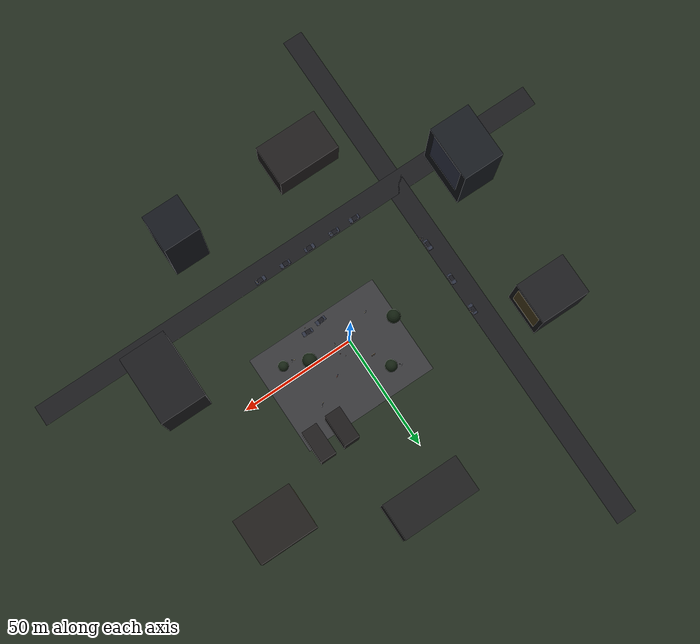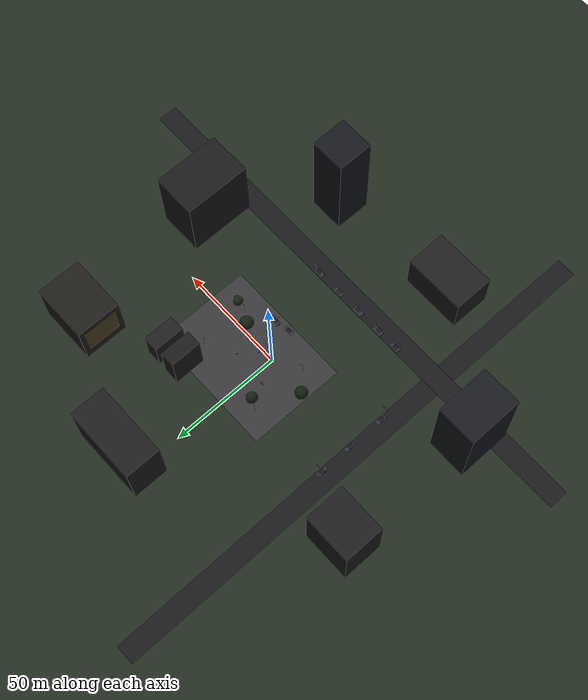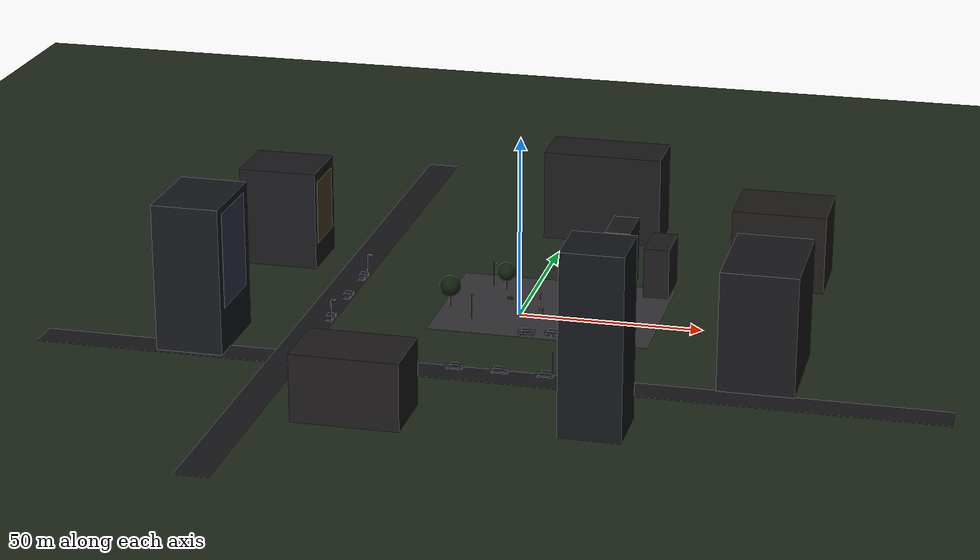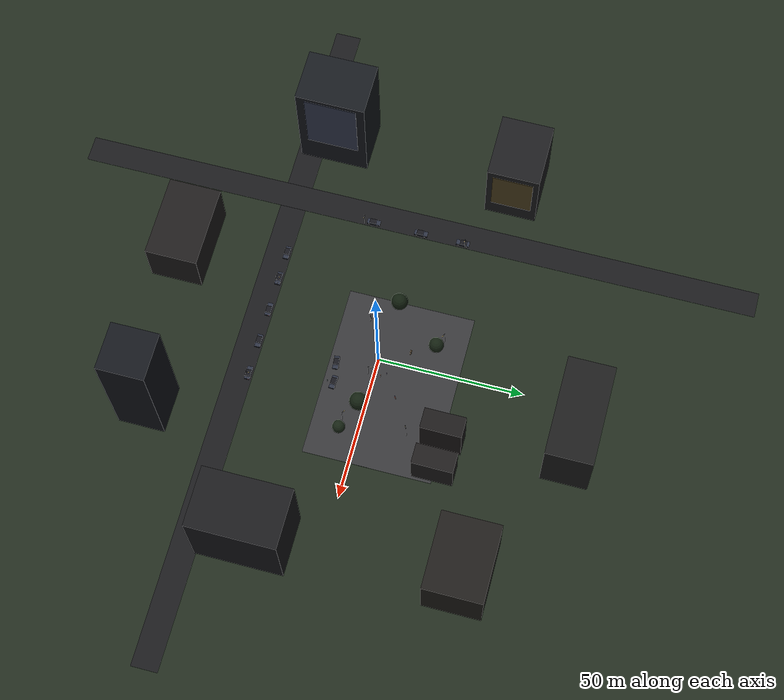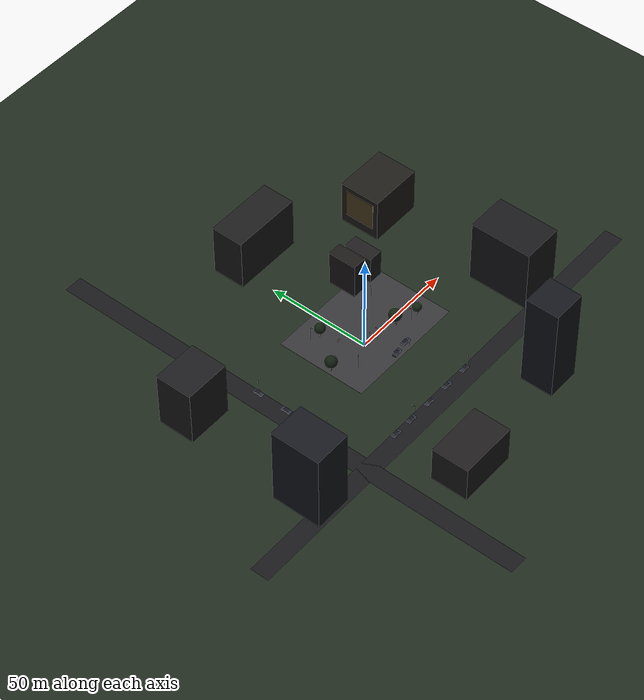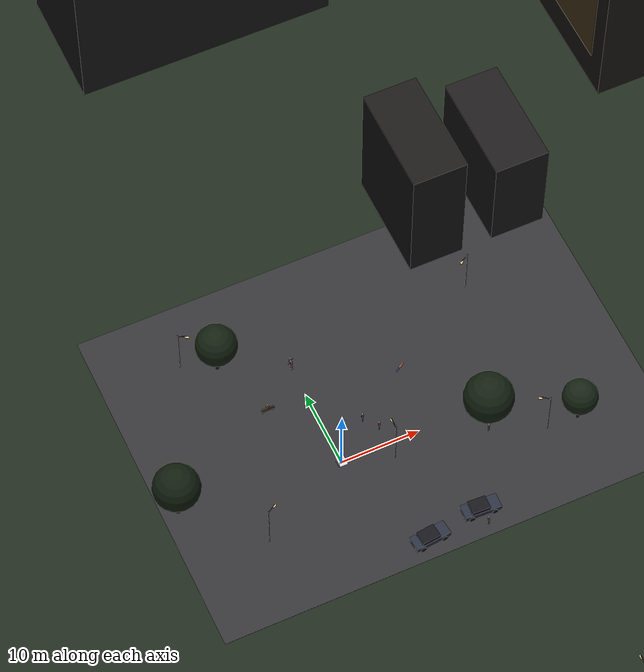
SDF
<sdf version="1.9">
 <world name="gradis_city">
  <physics name="1ms" type="ignored">
   <max_step_size>0.001</max_step_size>
   <real_time_factor>1.0</real_time_factor>
  </physics>
  <plugin filename="gz-sim-physics-system" name="gz::sim::systems::Physics"/>
  <plugin filename="gz-sim-user-commands-system" name="gz::sim::systems::UserCommands"/>
  <plugin filename="gz-sim-scene-broadcaster-system" name="gz::sim::systems::SceneBroadcaster"/>
  <plugin filename="gz-sim-imu-system" name="gz::sim::systems::Imu"/>
  <plugin filename="gz-sim-sensors-system" name="gz::sim::systems::Sensors">
   <render_engine>ogre2</render_engine>
  </plugin>
  <spherical_coordinates>
   <surface_model>EARTH_WGS84</surface_model>
   <latitude_deg>37.52860</latitude_deg>
   <longitude_deg>126.96520</longitude_deg>
   <elevation>38</elevation>
   <heading_deg>0</heading_deg>
  </spherical_coordinates>
  <scene>
   <ambient>0.05 0.05 0.07 1</ambient>
   <background>0.015 0.015 0.03 1</background>
   <shadows>true</shadows>
  </scene>
  <light type="directional" name="moon">
   <pose>0 0 300 0 0 0</pose>
   <diffuse>0.10 0.11 0.16 1</diffuse>
   <specular>0.02 0.02 0.03 1</specular>
   <direction>0.3 -0.5 -1</direction>
  </light>
  <model name="ground">
   <static>true</static>
   <link name="l">
    <collision name="c"><geometry><plane><normal>0 0 1</normal><size>500 500</size></plane></geometry></collision>
    <visual name="v">
     <geometry><plane><normal>0 0 1</normal><size>500 500</size></plane></geometry>
     <material><ambient>0.10 0.13 0.09 1</ambient><diffuse>0.12 0.16 0.11 1</diffuse></material>
    </visual>
   </link>
  </model>
  <model name="plaza">
   <static>true</static>
   <pose>8 6 0.01 0 0 0</pose>
   <link name="l">
    <visual name="v">
     <geometry><box><size>60 44 0.02</size></box></geometry>
     <material><ambient>0.13 0.13 0.14 1</ambient><diffuse>0.2 0.2 0.21 1</diffuse></material>
    </visual>
    <collision name="c"><geometry><box><size>60 44 0.02</size></box></geometry></collision>
   </link>
  </model>
  <model name="road_ew">
   <static>true</static>
   <pose>0 -44 0.01 0 0 0</pose>
   <link name="l">
    <visual name="v">
     <geometry><box><size>240 9 0.02</size></box></geometry>
     <material><diffuse>0.09 0.09 0.1 1</diffuse></material>
    </visual>
   </link>
  </model>
  <model name="road_ns">
   <static>true</static>
   <pose>-52 0 0.01 0 0 0</pose>
   <link name="l">
    <visual name="v">
     <geometry><box><size>9 240 0.02</size></box></geometry>
     <material><diffuse>0.09 0.09 0.1 1</diffuse></material>
    </visual>
   </link>
  </model>
  <model name="bldg1">
   <static>true</static>
   <pose>-75 30 14 0 0 0</pose>
   <link name="l">
    <visual name="v">
     <geometry><box><size>22 18 28</size></box></geometry>
     <material><diffuse>0.10 0.10 0.11 1</diffuse></material>
    </visual>
    <visual name="win">
     <pose>11.05 0 2 0 0 0</pose>
     <geometry><box><size>0.1 14 18</size></box></geometry>
     <material><emissive>0.25 0.2 0.1 1</emissive><diffuse>0.3 0.25 0.12 1</diffuse></material>
    </visual>
    <collision name="c"><geometry><box><size>22 18 28</size></box></geometry></collision>
   </link>
  </model>
  <model name="bldg2">
   <static>true</static>
   <pose>-78 -35 20 0 0 0</pose>
   <link name="l">
    <visual name="v">
     <geometry><box><size>18 24 40</size></box></geometry>
     <material><diffuse>0.08 0.09 0.11 1</diffuse></material>
    </visual>
    <visual name="win">
     <pose>9.05 0 5 0 0 0</pose>
     <geometry><box><size>0.1 18 26</size></box></geometry>
     <material><emissive>0.18 0.20 0.28 1</emissive><diffuse>0.2 0.22 0.3 1</diffuse></material>
    </visual>
    <collision name="c"><geometry><box><size>18 24 40</size></box></geometry></collision>
   </link>
  </model>
  <model name="bldg3">
   <static>true</static>
   <pose>65 45 11 0 0 0</pose>
   <link name="l">
    <visual name="v">
     <geometry><box><size>26 20 22</size></box></geometry>
     <material><diffuse>0.11 0.10 0.09 1</diffuse></material>
    </visual>
    <visual name="win">
     <pose>-13.05 0 1 0 0 0</pose>
     <geometry><box><size>0.1 15 14</size></box></geometry>
     <material><emissive>0.28 0.22 0.1 1</emissive><diffuse>0.3 0.24 0.12 1</diffuse></material>
    </visual>
    <collision name="c"><geometry><box><size>26 20 22</size></box></geometry></collision>
   </link>
  </model>
  <model name="bldg4">
   <static>true</static>
   <pose>70 -25 16 0 0 0</pose>
   <link name="l">
    <visual name="v">
     <geometry><box><size>20 30 32</size></box></geometry>
     <material><diffuse>0.09 0.09 0.10 1</diffuse></material>
    </visual>
    <collision name="c"><geometry><box><size>20 30 32</size></box></geometry></collision>
   </link>
  </model>
  <model name="bldg5">
   <static>true</static>
   <pose>10 70 13 0 0 0</pose>
   <link name="l">
    <visual name="v">
     <geometry><box><size>34 16 26</size></box></geometry>
     <material><diffuse>0.10 0.10 0.10 1</diffuse></material>
    </visual>
    <collision name="c"><geometry><box><size>34 16 26</size></box></geometry></collision>
   </link>
  </model>
  <model name="bldg6">
   <static>true</static>
   <pose>-25 -75 9 0 0 0</pose>
   <link name="l">
    <visual name="v">
     <geometry><box><size>28 18 18</size></box></geometry>
     <material><diffuse>0.11 0.10 0.10 1</diffuse></material>
    </visual>
    <collision name="c"><geometry><box><size>28 18 18</size></box></geometry></collision>
   </link>
  </model>
  <model name="bldg7">
   <static>true</static>
   <pose>35 -70 24 0 0 0</pose>
   <link name="l">
    <visual name="v">
     <geometry><box><size>16 16 48</size></box></geometry>
     <material><diffuse>0.07 0.08 0.10 1</diffuse></material>
    </visual>
    <collision name="c"><geometry><box><size>16 16 48</size></box></geometry></collision>
   </link>
  </model>
  <model name="bldg8">
   <static>true</static>
   <pose>22.5 28 9 0 0 0</pose>
   <link name="l">
    <visual name="v">
     <geometry><box><size>7 14 18</size></box></geometry>
     <material><diffuse>0.10 0.09 0.09 1</diffuse></material>
    </visual>
    <collision name="c"><geometry><box><size>7 14 18</size></box></geometry></collision>
   </link>
  </model>
  <model name="bldg9">
   <static>true</static>
   <pose>33.5 28 7 0 0 0</pose>
   <link name="l">
    <visual name="v">
     <geometry><box><size>7 14 14</size></box></geometry>
     <material><diffuse>0.11 0.10 0.10 1</diffuse></material>
    </visual>
    <collision name="c"><geometry><box><size>7 14 14</size></box></geometry></collision>
   </link>
  </model>
  <include><uri>model://streetlight</uri><name>sl1</name><pose>-12 -6 0 0 0 0.5</pose></include>
  <include><uri>model://streetlight</uri><name>sl2</name><pose>24 -6 0 0 0 2.6</pose></include>
  <include><uri>model://streetlight</uri><name>sl3</name><pose>-12 20 0 0 0 -0.5</pose></include>
  <include><uri>model://streetlight</uri><name>sl4</name><pose>24 16 0 0 0 -2.6</pose></include>
  <include><uri>model://streetlight</uri><name>sl5</name><pose>6 -2 0 0 0 1.57</pose></include>
  <include><uri>model://streetlight</uri><name>sl6</name><pose>-48 -18 0 0 0 0</pose></include>
  <include><uri>model://streetlight</uri><name>sl7</name><pose>-48 18 0 0 0 0</pose></include>
  <include><uri>model://streetlight</uri><name>sl8</name><pose>-18 -41 0 0 0 1.57</pose></include>
  <include><uri>model://streetlight</uri><name>sl9</name><pose>18 -41 0 0 0 1.57</pose></include>
  <include><uri>model://car</uri><name>car1</name><pose>-30 -41 0 0 0 0</pose></include>
  <include><uri>model://car</uri><name>car2</name><pose>-20 -41 0 0 0 0</pose></include>
  <include><uri>model://car</uri><name>car3</name><pose>-8 -41 0 0 0 3.1416</pose></include>
  <include><uri>model://car</uri><name>car4</name><pose>4 -41 0 0 0 0</pose></include>
  <include><uri>model://car</uri><name>car5</name><pose>16 -41 0 0 0 3.1416</pose></include>
  <include><uri>model://car</uri><name>car6</name><pose>-49 -15 0 0 0 1.5708</pose></include>
  <include><uri>model://car</uri><name>car7</name><pose>-49 2 0 0 0 1.5708</pose></include>
  <include><uri>model://car</uri><name>car8</name><pose>-49 17 0 0 0 -1.5708</pose></include>
  <include><uri>model://car</uri><name>car9</name><pose>5 -13.5 0 0 0 0.1</pose></include>
  <include><uri>model://car</uri><name>car10</name><pose>12 -12.5 0 0 0 -0.05</pose></include>
  <model name="tree1">
   <static>true</static>
   <pose>-8 18 0 0 0 0</pose>
   <link name="l">
    <visual name="trunk">
     <pose>0 0 2 0 0 0</pose>
     <geometry><cylinder><radius>0.25</radius><length>4</length></cylinder></geometry>
     <material><diffuse>0.14 0.10 0.07 1</diffuse></material>
    </visual>
    <visual name="crown">
     <pose>0 0 5.2 0 0 0</pose>
     <geometry><sphere><radius>2.6</radius></sphere></geometry>
     <material><diffuse>0.07 0.12 0.06 1</diffuse></material>
    </visual>
    <collision name="c">
     <pose>0 0 3 0 0 0</pose>
     <geometry><cylinder><radius>0.3</radius><length>6</length></cylinder></geometry>
    </collision>
   </link>
  </model>
  <model name="tree2">
   <static>true</static>
   <pose>28 -6 0 0 0 0</pose>
   <link name="l">
    <visual name="trunk">
     <pose>0 0 1.8 0 0 0</pose>
     <geometry><cylinder><radius>0.22</radius><length>3.6</length></cylinder></geometry>
     <material><diffuse>0.14 0.10 0.07 1</diffuse></material>
    </visual>
    <visual name="crown">
     <pose>0 0 4.6 0 0 0</pose>
     <geometry><sphere><radius>2.2</radius></sphere></geometry>
     <material><diffuse>0.08 0.13 0.07 1</diffuse></material>
    </visual>
   </link>
  </model>
  <model name="tree3">
   <static>true</static>
   <pose>-20 2 0 0 0 0</pose>
   <link name="l">
    <visual name="trunk">
     <pose>0 0 2.2 0 0 0</pose>
     <geometry><cylinder><radius>0.28</radius><length>4.4</length></cylinder></geometry>
     <material><diffuse>0.14 0.10 0.07 1</diffuse></material>
    </visual>
    <visual name="crown">
     <pose>0 0 5.8 0 0 0</pose>
     <geometry><sphere><radius>2.9</radius></sphere></geometry>
     <material><diffuse>0.06 0.11 0.05 1</diffuse></material>
    </visual>
   </link>
  </model>
  <model name="tree4">
   <static>true</static>
   <pose>18 -2 0 0 0 0</pose>
   <link name="l">
    <visual name="trunk">
     <pose>0 0 2 0 0 0</pose>
     <geometry><cylinder><radius>0.26</radius><length>4</length></cylinder></geometry>
     <material><diffuse>0.14 0.10 0.07 1</diffuse></material>
    </visual>
    <visual name="crown">
     <pose>0 0 5.4 0 0 0</pose>
     <geometry><sphere><radius>3.1</radius></sphere></geometry>
     <material><diffuse>0.07 0.12 0.06 1</diffuse></material>
    </visual>
   </link>
  </model>
  <include><uri>model://dji_dock3</uri><name>dock3_a</name></include>
  <include><uri>model://m4td</uri><name>m4td</name><pose>0 0 0.50 0 0 0</pose></include>
  <model name="crowd_static_1">
   <static>true</static>
   <pose>4.6 4.0 0 0 0 0.8</pose>
   <link name="l">
    <visual name="torso">
     <pose>0 0 1.25 0 0 0</pose>
     <geometry><capsule><radius>0.14</radius><length>0.5</length></capsule></geometry>
     <material><diffuse>0.30 0.25 0.35 1</diffuse></material>
    </visual>
    <visual name="head">
     <pose>0 0 1.68 0 0 0</pose>
     <geometry><sphere><radius>0.1</radius></sphere></geometry>
     <material><diffuse>0.75 0.58 0.45 1</diffuse></material>
    </visual>
    <visual name="legs">
     <pose>0 0 0.55 0 0 0</pose>
     <geometry><capsule><radius>0.11</radius><length>0.8</length></capsule></geometry>
     <material><diffuse>0.12 0.13 0.2 1</diffuse></material>
    </visual>
   </link>
  </model>
  <model name="crowd_static_2">
   <static>true</static>
   <pose>5.9 2.2 0 0 0 -1.4</pose>
   <link name="l">
    <visual name="torso">
     <pose>0 0 1.22 0 0 0</pose>
     <geometry><capsule><radius>0.14</radius><length>0.48</length></capsule></geometry>
     <material><diffuse>0.4 0.2 0.18 1</diffuse></material>
    </visual>
    <visual name="head">
     <pose>0 0 1.64 0 0 0</pose>
     <geometry><sphere><radius>0.1</radius></sphere></geometry>
     <material><diffuse>0.78 0.6 0.47 1</diffuse></material>
    </visual>
    <visual name="legs">
     <pose>0 0 0.54 0 0 0</pose>
     <geometry><capsule><radius>0.11</radius><length>0.78</length></capsule></geometry>
     <material><diffuse>0.15 0.15 0.17 1</diffuse></material>
    </visual>
   </link>
  </model>
  <model name="person_down_tree">
   <static>true</static>
   <pose>18 -2.6 0.12 0 1.5708 1.1</pose>
   <link name="l">
    <visual name="torso">
     <geometry><capsule><radius>0.14</radius><length>0.5</length></capsule></geometry>
     <material><diffuse>0.35 0.32 0.2 1</diffuse></material>
    </visual>
    <visual name="head">
     <pose>0 0 0.42 0 0 0</pose>
     <geometry><sphere><radius>0.1</radius></sphere></geometry>
     <material><diffuse>0.75 0.58 0.45 1</diffuse></material>
    </visual>
    <visual name="legs">
     <pose>0 0.04 -0.55 0 0.12 0</pose>
     <geometry><capsule><radius>0.1</radius><length>0.7</length></capsule></geometry>
     <material><diffuse>0.14 0.16 0.22 1</diffuse></material>
    </visual>
   </link>
  </model>
  <model name="person_down_open">
   <static>true</static>
   <pose>12 9 0.12 0 1.5708 0.6</pose>
   <link name="l">
    <visual name="torso">
     <geometry><capsule><radius>0.14</radius><length>0.5</length></capsule></geometry>
     <material><diffuse>0.55 0.30 0.25 1</diffuse></material>
    </visual>
    <visual name="head">
     <pose>0 0 0.42 0 0 0</pose>
     <geometry><sphere><radius>0.1</radius></sphere></geometry>
     <material><diffuse>0.85 0.65 0.52 1</diffuse></material>
    </visual>
    <visual name="legs">
     <pose>0 0.02 -0.55 0 0.12 0</pose>
     <geometry><capsule><radius>0.1</radius><length>0.7</length></capsule></geometry>
     <material><diffuse>0.18 0.20 0.32 1</diffuse></material>
    </visual>
   </link>
  </model>
  <model name="person_behind_car">
   <static>true</static>
   <pose>12 -14.6 0 0 0 1.5708</pose>
   <link name="l">
    <visual name="torso">
     <pose>0 0 1.25 0 0 0</pose>
     <geometry><capsule><radius>0.14</radius><length>0.5</length></capsule></geometry>
     <material><diffuse>0.2 0.35 0.3 1</diffuse></material>
    </visual>
    <visual name="head">
     <pose>0 0 1.68 0 0 0</pose>
     <geometry><sphere><radius>0.1</radius></sphere></geometry>
     <material><diffuse>0.78 0.6 0.47 1</diffuse></material>
    </visual>
    <visual name="legs">
     <pose>0 0 0.55 0 0 0</pose>
     <geometry><capsule><radius>0.11</radius><length>0.8</length></capsule></geometry>
     <material><diffuse>0.1 0.1 0.12 1</diffuse></material>
    </visual>
   </link>
  </model>
  <model name="hugger_a">
   <static>true</static>
   <pose>0 14 0 0 0.12 1.5708</pose>
   <link name="l">
    <visual name="torso">
     <pose>0 0 1.22 0 0 0</pose>
     <geometry><capsule><radius>0.14</radius><length>0.5</length></capsule></geometry>
     <material><diffuse>0.45 0.25 0.3 1</diffuse></material>
    </visual>
    <visual name="head">
     <pose>0 0.06 1.66 0 0 0</pose>
     <geometry><sphere><radius>0.1</radius></sphere></geometry>
     <material><diffuse>0.8 0.62 0.48 1</diffuse></material>
    </visual>
    <visual name="legs">
     <pose>0 0 0.54 0 0 0</pose>
     <geometry><capsule><radius>0.11</radius><length>0.78</length></capsule></geometry>
     <material><diffuse>0.16 0.16 0.2 1</diffuse></material>
    </visual>
    <visual name="arm">
     <pose>0 0.22 1.3 -1.2 0 0</pose>
     <geometry><capsule><radius>0.045</radius><length>0.5</length></capsule></geometry>
     <material><diffuse>0.45 0.25 0.3 1</diffuse></material>
    </visual>
   </link>
  </model>
  <model name="hugger_b">
   <static>true</static>
   <pose>0 14.45 0 0 -0.12 -1.5708</pose>
   <link name="l">
    <visual name="torso">
     <pose>0 0 1.18 0 0 0</pose>
     <geometry><capsule><radius>0.13</radius><length>0.46</length></capsule></geometry>
     <material><diffuse>0.25 0.3 0.42 1</diffuse></material>
    </visual>
    <visual name="head">
     <pose>0 0.06 1.6 0 0 0</pose>
     <geometry><sphere><radius>0.095</radius></sphere></geometry>
     <material><diffuse>0.82 0.64 0.5 1</diffuse></material>
    </visual>
    <visual name="legs">
     <pose>0 0 0.52 0 0 0</pose>
     <geometry><capsule><radius>0.1</radius><length>0.76</length></capsule></geometry>
     <material><diffuse>0.2 0.18 0.16 1</diffuse></material>
    </visual>
    <visual name="arm">
     <pose>0 0.2 1.28 -1.3 0 0</pose>
     <geometry><capsule><radius>0.042</radius><length>0.48</length></capsule></geometry>
     <material><diffuse>0.25 0.3 0.42 1</diffuse></material>
    </visual>
   </link>
  </model>
  <model name="bench">
   <static>true</static>
   <pose>-5 10 0 0 0 0</pose>
   <link name="l">
    <visual name="seat">
     <pose>0 0 0.45 0 0 0</pose>
     <geometry><box><size>1.6 0.45 0.06</size></box></geometry>
     <material><diffuse>0.25 0.18 0.1 1</diffuse></material>
    </visual>
    <visual name="back">
     <pose>0 -0.22 0.75 0.25 0 0</pose>
     <geometry><box><size>1.6 0.05 0.5</size></box></geometry>
     <material><diffuse>0.25 0.18 0.1 1</diffuse></material>
    </visual>
    <visual name="leg1">
     <pose>0.7 0 0.22 0 0 0</pose>
     <geometry><box><size>0.06 0.4 0.44</size></box></geometry>
     <material><diffuse>0.1 0.1 0.1 1</diffuse></material>
    </visual>
    <visual name="leg2">
     <pose>-0.7 0 0.22 0 0 0</pose>
     <geometry><box><size>0.06 0.4 0.44</size></box></geometry>
     <material><diffuse>0.1 0.1 0.1 1</diffuse></material>
    </visual>
   </link>
  </model>
  <model name="person_sitting">
   <static>true</static>
   <pose>-5 10.05 0 0 0 -1.5708</pose>
   <link name="l">
    <visual name="torso">
     <pose>0 0 0.85 0.25 0 0</pose>
     <geometry><capsule><radius>0.14</radius><length>0.46</length></capsule></geometry>
     <material><diffuse>0.3 0.34 0.28 1</diffuse></material>
    </visual>
    <visual name="head">
     <pose>0 0.05 1.28 0 0 0</pose>
     <geometry><sphere><radius>0.1</radius></sphere></geometry>
     <material><diffuse>0.78 0.6 0.47 1</diffuse></material>
    </visual>
    <visual name="thigh">
     <pose>0 0.22 0.5 1.5708 0 0</pose>
     <geometry><capsule><radius>0.09</radius><length>0.4</length></capsule></geometry>
     <material><diffuse>0.15 0.16 0.2 1</diffuse></material>
    </visual>
    <visual name="shin">
     <pose>0 0.42 0.25 0.15 0 0</pose>
     <geometry><capsule><radius>0.06</radius><length>0.42</length></capsule></geometry>
     <material><diffuse>0.15 0.16 0.2 1</diffuse></material>
    </visual>
   </link>
  </model>
 </world>
</sdf>

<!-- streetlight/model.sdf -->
<!-- 가로등 (7m 폴 + 웜화이트 포인트 라이트) — 야간 도시의 빛 웅덩이.
     불빛 아래는 보이고, 사이는 어둡다 — night_mode/thermal 툴 유도 환경. -->
<sdf version="1.9">
  <model name="streetlight">
    <static>true</static>
    <link name="pole">
      <visual name="pole_v">
        <pose>0 0 3.5 0 0 0</pose>
        <geometry><cylinder><radius>0.08</radius><length>7</length></cylinder></geometry>
        <material><diffuse>0.15 0.15 0.16 1</diffuse></material>
      </visual>
      <visual name="arm">
        <pose>0.6 0 6.9 0 1.35 0</pose>
        <geometry><cylinder><radius>0.05</radius><length>1.3</length></cylinder></geometry>
        <material><diffuse>0.15 0.15 0.16 1</diffuse></material>
      </visual>
      <visual name="lamp">
        <pose>1.15 0 6.7 0 0 0</pose>
        <geometry><box><size>0.5 0.22 0.12</size></box></geometry>
        <material><emissive>0.9 0.75 0.45 1</emissive><diffuse>0.9 0.8 0.5 1</diffuse></material>
      </visual>
      <light name="lamp_light" type="point">
        <pose>1.15 0 6.55 0 0 0</pose>
        <diffuse>0.95 0.8 0.55 1</diffuse>
        <specular>0.2 0.18 0.12 1</specular>
        <attenuation><range>26</range><constant>0.25</constant>
          <linear>0.045</linear><quadratic>0.0035</quadratic></attenuation>
        <cast_shadows>false</cast_shadows>
        <intensity>2.4</intensity>
      </light>
    </link>
  </model>
</sdf>

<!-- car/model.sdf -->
<!-- 세단 (4.6 x 1.85 x 1.45 m) — 야간 도시의 차폐물/배경 차량 -->
<sdf version="1.9">
  <model name="car">
    <static>true</static>
    <link name="body">
      <visual name="lower">
        <pose>0 0 0.55 0 0 0</pose>
        <geometry><box><size>4.6 1.85 0.7</size></box></geometry>
        <material><ambient>0.08 0.09 0.12 1</ambient><diffuse>0.16 0.18 0.24 1</diffuse>
          <specular>0.3 0.3 0.3 1</specular></material>
      </visual>
      <visual name="cabin">
        <pose>-0.25 0 1.12 0 0 0</pose>
        <geometry><box><size>2.3 1.7 0.55</size></box></geometry>
        <material><ambient>0.04 0.04 0.05 1</ambient><diffuse>0.08 0.08 0.1 1</diffuse>
          <specular>0.4 0.4 0.45 1</specular></material>
      </visual>
      <visual name="wheel_fl"><pose>1.45 0.95 0.33 1.5708 0 0</pose>
        <geometry><cylinder><radius>0.33</radius><length>0.22</length></cylinder></geometry>
        <material><diffuse>0.05 0.05 0.05 1</diffuse></material></visual>
      <visual name="wheel_fr"><pose>1.45 -0.95 0.33 1.5708 0 0</pose>
        <geometry><cylinder><radius>0.33</radius><length>0.22</length></cylinder></geometry>
        <material><diffuse>0.05 0.05 0.05 1</diffuse></material></visual>
      <visual name="wheel_bl"><pose>-1.45 0.95 0.33 1.5708 0 0</pose>
        <geometry><cylinder><radius>0.33</radius><length>0.22</length></cylinder></geometry>
        <material><diffuse>0.05 0.05 0.05 1</diffuse></material></visual>
      <visual name="wheel_br"><pose>-1.45 -0.95 0.33 1.5708 0 0</pose>
        <geometry><cylinder><radius>0.33</radius><length>0.22</length></cylinder></geometry>
        <material><diffuse>0.05 0.05 0.05 1</diffuse></material></visual>
      <visual name="taillight_l"><pose>-2.3 0.6 0.7 0 0 0</pose>
        <geometry><box><size>0.02 0.3 0.12</size></box></geometry>
        <material><emissive>0.6 0.05 0.02 1</emissive><diffuse>0.5 0.05 0.02 1</diffuse></material></visual>
      <visual name="taillight_r"><pose>-2.3 -0.6 0.7 0 0 0</pose>
        <geometry><box><size>0.02 0.3 0.12</size></box></geometry>
        <material><emissive>0.6 0.05 0.02 1</emissive><diffuse>0.5 0.05 0.02 1</diffuse></material></visual>
      <collision name="col">
        <pose>0 0 0.75 0 0 0</pose>
        <geometry><box><size>4.6 1.85 1.45</size></box></geometry>
      </collision>
    </link>
  </model>
</sdf>

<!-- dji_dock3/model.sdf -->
<sdf version="1.9">
  <model name="dji_dock3">
    <static>true</static>
    <link name="body">
      <!-- 받침 베이스 -->
      <visual name="base">
        <pose>0 0 0.06 0 0 0</pose>
        <geometry><box><size>1.15 0.95 0.12</size></box></geometry>
        <material><ambient>0.25 0.25 0.26 1</ambient><diffuse>0.35 0.35 0.37 1</diffuse></material>
      </visual>
      <collision name="base_col">
        <pose>0 0 0.06 0 0 0</pose>
        <geometry><box><size>1.15 0.95 0.12</size></box></geometry>
      </collision>

      <!-- 본체 (화이트 인클로저) -->
      <visual name="shell">
        <pose>0 0 0.30 0 0 0</pose>
        <geometry><box><size>1.0 0.8 0.36</size></box></geometry>
        <material><ambient>0.75 0.76 0.78 1</ambient><diffuse>0.88 0.89 0.91 1</diffuse>
          <specular>0.2 0.2 0.2 1</specular></material>
      </visual>
      <collision name="shell_col">
        <pose>0 0 0.30 0 0 0</pose>
        <geometry><box><size>1.0 0.8 0.36</size></box></geometry>
      </collision>

      <!-- 개방된 리드 패널 (좌/우, 바깥으로 젖혀짐) -->
      <visual name="lid_l">
        <pose>0 0.55 0.50 -0.55 0 0</pose>
        <geometry><box><size>1.0 0.42 0.02</size></box></geometry>
        <material><diffuse>0.85 0.86 0.88 1</diffuse></material>
      </visual>
      <visual name="lid_r">
        <pose>0 -0.55 0.50 0.55 0 0</pose>
        <geometry><box><size>1.0 0.42 0.02</size></box></geometry>
        <material><diffuse>0.85 0.86 0.88 1</diffuse></material>
      </visual>

      <!-- 내부 착륙 패드 (H 마커) — 드론 스폰 위치 z≈0.50 -->
      <visual name="pad">
        <pose>0 0 0.485 0 0 0</pose>
        <geometry><box><size>0.6 0.6 0.01</size></box></geometry>
        <material><diffuse>0.12 0.12 0.13 1</diffuse></material>
      </visual>
      <collision name="pad_col">
        <pose>0 0 0.485 0 0 0</pose>
        <geometry><box><size>0.6 0.6 0.01</size></box></geometry>
      </collision>
      <visual name="pad_marker">
        <pose>0 0 0.492 0 0 0</pose>
        <geometry><cylinder><radius>0.2</radius><length>0.004</length></cylinder></geometry>
        <material><diffuse>0.85 0.74 0.28 1</diffuse></material>
      </visual>
      <visual name="pad_marker_core">
        <pose>0 0 0.495 0 0 0</pose>
        <geometry><cylinder><radius>0.07</radius><length>0.004</length></cylinder></geometry>
        <material><diffuse>0.12 0.12 0.13 1</diffuse></material>
      </visual>

      <!-- 상태 LED 바 -->
      <visual name="led">
        <pose>0.505 0 0.42 0 0 0</pose>
        <geometry><box><size>0.012 0.3 0.03</size></box></geometry>
        <material><emissive>0.1 0.7 0.25 1</emissive><diffuse>0.1 0.6 0.25 1</diffuse></material>
      </visual>

      <!-- 기상 센서 마스트 (풍속/강우) -->
      <visual name="mast">
        <pose>-0.42 -0.32 0.78 0 0 0</pose>
        <geometry><cylinder><radius>0.012</radius><length>0.6</length></cylinder></geometry>
        <material><diffuse>0.4 0.4 0.42 1</diffuse></material>
      </visual>
      <visual name="anemometer">
        <pose>-0.42 -0.32 1.1 0 0 0</pose>
        <geometry><sphere><radius>0.035</radius></sphere></geometry>
        <material><diffuse>0.7 0.7 0.72 1</diffuse></material>
      </visual>

      <!-- 야간용 패드 조명 -->
      <light name="pad_light" type="point">
        <pose>0 0 0.9 0 0 0</pose>
        <diffuse>0.8 0.85 0.95 1</diffuse>
        <attenuation><range>8</range><constant>0.4</constant>
          <linear>0.2</linear><quadratic>0.05</quadratic></attenuation>
        <cast_shadows>false</cast_shadows>
        <intensity>1.2</intensity>
      </light>
    </link>
  </model>
</sdf>

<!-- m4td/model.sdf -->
<sdf version="1.9">
  <model name="m4td">
    <pose>0 0 0.12 0 0 0</pose>

    <!-- ===================== 기체 본체 ===================== -->
    <link name="base_link">
      <inertial>
        <mass>1.69</mass> <!-- 본체+배터리 (로터 4x0.04 제외) -->
        <inertia>
          <ixx>0.021</ixx><iyy>0.021</iyy><izz>0.036</izz>
          <ixy>0</ixy><ixz>0</ixz><iyz>0</iyz>
        </inertia>
      </inertial>

      <visual name="fuselage">
        <geometry><box><size>0.28 0.14 0.09</size></box></geometry>
        <material><ambient>0.16 0.17 0.18 1</ambient><diffuse>0.32 0.33 0.35 1</diffuse></material>
      </visual>
      <collision name="fuselage_col">
        <geometry><box><size>0.28 0.14 0.09</size></box></geometry>
      </collision>

      <!-- 4 폴딩암 -->
      <visual name="arm_fr"><pose>0.082 -0.082 0.02 0 0 -0.785</pose>
        <geometry><box><size>0.22 0.025 0.018</size></box></geometry>
        <material><diffuse>0.2 0.2 0.22 1</diffuse></material></visual>
      <visual name="arm_fl"><pose>0.082 0.082 0.02 0 0 0.785</pose>
        <geometry><box><size>0.22 0.025 0.018</size></box></geometry>
        <material><diffuse>0.2 0.2 0.22 1</diffuse></material></visual>
      <visual name="arm_br"><pose>-0.082 -0.082 0.02 0 0 0.785</pose>
        <geometry><box><size>0.22 0.025 0.018</size></box></geometry>
        <material><diffuse>0.2 0.2 0.22 1</diffuse></material></visual>
      <visual name="arm_bl"><pose>-0.082 0.082 0.02 0 0 -0.785</pose>
        <geometry><box><size>0.22 0.025 0.018</size></box></geometry>
        <material><diffuse>0.2 0.2 0.22 1</diffuse></material></visual>

      <!-- 상부 RTK 돔 + 전방위 비전 센서 표식 -->
      <visual name="rtk_dome"><pose>0 0 0.055 0 0 0</pose>
        <geometry><cylinder><radius>0.022</radius><length>0.02</length></cylinder></geometry>
        <material><diffuse>0.5 0.5 0.52 1</diffuse></material></visual>
      <visual name="vision_front"><pose>0.142 0 0.01 0 1.5708 0</pose>
        <geometry><cylinder><radius>0.009</radius><length>0.004</length></cylinder></geometry>
        <material><diffuse>0.02 0.02 0.05 1</diffuse></material></visual>

      <!-- 랜딩 레그 -->
      <visual name="leg_l"><pose>0 0.06 -0.07 0.3 0 0</pose>
        <geometry><cylinder><radius>0.006</radius><length>0.08</length></cylinder></geometry>
        <material><diffuse>0.18 0.18 0.18 1</diffuse></material></visual>
      <visual name="leg_r"><pose>0 -0.06 -0.07 -0.3 0 0</pose>
        <geometry><cylinder><radius>0.006</radius><length>0.08</length></cylinder></geometry>
        <material><diffuse>0.18 0.18 0.18 1</diffuse></material></visual>
      <collision name="legs_col"><pose>0 0 -0.1 0 0 0</pose>
        <geometry><box><size>0.14 0.16 0.02</size></box></geometry></collision>

      <sensor name="imu_sensor" type="imu">
        <pose>0 0 0 3.141593 0 0</pose>
        <always_on>1</always_on>
        <update_rate>1000</update_rate>
      </sensor>
    </link>

    <!-- ============ 짐벌 (광각+텔레+열화상+LRF, 전방 하향 ~55°) ============ -->
    <link name="gimbal_link">
      <pose>0.13 0 -0.07 0 0.96 0</pose>
      <inertial>
        <mass>0.16</mass>
        <inertia><ixx>0.0001</ixx><iyy>0.0001</iyy><izz>0.0001</izz>
          <ixy>0</ixy><ixz>0</ixz><iyz>0</iyz></inertia>
      </inertial>
      <visual name="gimbal_body">
        <geometry><sphere><radius>0.032</radius></sphere></geometry>
        <material><diffuse>0.12 0.12 0.12 1</diffuse></material>
      </visual>
      <visual name="lens_wide">
        <pose>0.03 0.008 0 0 1.5708 0</pose>
        <geometry><cylinder><radius>0.009</radius><length>0.012</length></cylinder></geometry>
        <material><diffuse>0.02 0.02 0.05 1</diffuse></material>
      </visual>
      <visual name="lens_ir">
        <pose>0.03 -0.012 0 0 1.5708 0</pose>
        <geometry><cylinder><radius>0.006</radius><length>0.012</length></cylinder></geometry>
        <material><diffuse>0.05 0.02 0.02 1</diffuse></material>
      </visual>
      <sensor name="eo_camera" type="camera">
        <always_on>1</always_on>
        <update_rate>15</update_rate>
        <visualize>1</visualize>
        <topic>eo_camera</topic>
        <camera>
          <horizontal_fov>1.15</horizontal_fov>
          <image><width>640</width><height>360</height><format>R8G8B8</format></image>
          <clip><near>0.1</near><far>800</far></clip>
        </camera>
      </sensor>
    </link>
    <joint name="gimbal_joint" type="fixed">
      <parent>base_link</parent><child>gimbal_link</child>
    </joint>

    <!-- ===================== 로터 4개 ===================== -->
    <!-- ArduPilot Quad-X: 0=FR(CCW) 1=BL(CCW) 2=FL(CW) 3=BR(CW) -->
    <link name="rotor_0">
      <pose>0.163 -0.163 0.045 0 0 0</pose>
      <inertial><mass>0.04</mass>
        <inertia><ixx>2e-5</ixx><iyy>3.2e-4</iyy><izz>3.3e-4</izz>
          <ixy>0</ixy><ixz>0</ixz><iyz>0</iyz></inertia></inertial>
      <visual name="prop"><geometry><box><size>0.30 0.025 0.005</size></box></geometry>
        <material><diffuse>0.85 0.74 0.28 1</diffuse></material></visual>
      <collision name="prop_col"><geometry><box><size>0.30 0.025 0.005</size></box></geometry></collision>
    </link>
    <joint name="rotor_0_joint" type="revolute">
      <parent>base_link</parent><child>rotor_0</child>
      <axis><xyz>0 0 1</xyz><limit><lower>-1e16</lower><upper>1e16</upper></limit>
        <dynamics><damping>0.002</damping></dynamics></axis>
    </joint>

    <link name="rotor_1">
      <pose>-0.163 0.163 0.045 0 0 0</pose>
      <inertial><mass>0.04</mass>
        <inertia><ixx>2e-5</ixx><iyy>3.2e-4</iyy><izz>3.3e-4</izz>
          <ixy>0</ixy><ixz>0</ixz><iyz>0</iyz></inertia></inertial>
      <visual name="prop"><geometry><box><size>0.30 0.025 0.005</size></box></geometry>
        <material><diffuse>0.85 0.74 0.28 1</diffuse></material></visual>
      <collision name="prop_col"><geometry><box><size>0.30 0.025 0.005</size></box></geometry></collision>
    </link>
    <joint name="rotor_1_joint" type="revolute">
      <parent>base_link</parent><child>rotor_1</child>
      <axis><xyz>0 0 1</xyz><limit><lower>-1e16</lower><upper>1e16</upper></limit>
        <dynamics><damping>0.002</damping></dynamics></axis>
    </joint>

    <link name="rotor_2">
      <pose>0.163 0.163 0.045 0 0 0</pose>
      <inertial><mass>0.04</mass>
        <inertia><ixx>2e-5</ixx><iyy>3.2e-4</iyy><izz>3.3e-4</izz>
          <ixy>0</ixy><ixz>0</ixz><iyz>0</iyz></inertia></inertial>
      <visual name="prop"><geometry><box><size>0.30 0.025 0.005</size></box></geometry>
        <material><diffuse>0.25 0.25 0.27 1</diffuse></material></visual>
      <collision name="prop_col"><geometry><box><size>0.30 0.025 0.005</size></box></geometry></collision>
    </link>
    <joint name="rotor_2_joint" type="revolute">
      <parent>base_link</parent><child>rotor_2</child>
      <axis><xyz>0 0 1</xyz><limit><lower>-1e16</lower><upper>1e16</upper></limit>
        <dynamics><damping>0.002</damping></dynamics></axis>
    </joint>

    <link name="rotor_3">
      <pose>-0.163 -0.163 0.045 0 0 0</pose>
      <inertial><mass>0.04</mass>
        <inertia><ixx>2e-5</ixx><iyy>3.2e-4</iyy><izz>3.3e-4</izz>
          <ixy>0</ixy><ixz>0</ixz><iyz>0</iyz></inertia></inertial>
      <visual name="prop"><geometry><box><size>0.30 0.025 0.005</size></box></geometry>
        <material><diffuse>0.25 0.25 0.27 1</diffuse></material></visual>
      <collision name="prop_col"><geometry><box><size>0.30 0.025 0.005</size></box></geometry></collision>
    </link>
    <joint name="rotor_3_joint" type="revolute">
      <parent>base_link</parent><child>rotor_3</child>
      <axis><xyz>0 0 1</xyz><limit><lower>-1e16</lower><upper>1e16</upper></limit>
        <dynamics><damping>0.002</damping></dynamics></axis>
    </joint>

    <!-- ===================== 양력 모델 (LiftDrag) ===================== -->
    <!-- 12" 프롭 추정: 1.85kg 호버 ~45% 스로틀 목표 1차 산정 -->
    <plugin filename="gz-sim-lift-drag-system" name="gz::sim::systems::LiftDrag">
      <a0>0.3</a0><cla>4.25</cla><cda>0.10</cda><cma>0</cma>
      <alpha_stall>1.4</alpha_stall><cla_stall>-0.025</cla_stall>
      <cda_stall>0.0</cda_stall><cma_stall>0</cma_stall>
      <area>0.0035</area><air_density>1.2041</air_density>
      <cp>0.075 0 0</cp><forward>1 0 0</forward><upward>0 0 1</upward>
      <link_name>rotor_0</link_name>
    </plugin>
    <plugin filename="gz-sim-lift-drag-system" name="gz::sim::systems::LiftDrag">
      <a0>0.3</a0><cla>4.25</cla><cda>0.10</cda><cma>0</cma>
      <alpha_stall>1.4</alpha_stall><cla_stall>-0.025</cla_stall>
      <cda_stall>0.0</cda_stall><cma_stall>0</cma_stall>
      <area>0.0035</area><air_density>1.2041</air_density>
      <cp>0.075 0 0</cp><forward>1 0 0</forward><upward>0 0 1</upward>
      <link_name>rotor_1</link_name>
    </plugin>
    <plugin filename="gz-sim-lift-drag-system" name="gz::sim::systems::LiftDrag">
      <a0>0.3</a0><cla>4.25</cla><cda>0.10</cda><cma>0</cma>
      <alpha_stall>1.4</alpha_stall><cla_stall>-0.025</cla_stall>
      <cda_stall>0.0</cda_stall><cma_stall>0</cma_stall>
      <area>0.0035</area><air_density>1.2041</air_density>
      <cp>-0.075 0 0</cp><forward>-1 0 0</forward><upward>0 0 1</upward>
      <link_name>rotor_2</link_name>
    </plugin>
    <plugin filename="gz-sim-lift-drag-system" name="gz::sim::systems::LiftDrag">
      <a0>0.3</a0><cla>4.25</cla><cda>0.10</cda><cma>0</cma>
      <alpha_stall>1.4</alpha_stall><cla_stall>-0.025</cla_stall>
      <cda_stall>0.0</cda_stall><cma_stall>0</cma_stall>
      <area>0.0035</area><air_density>1.2041</air_density>
      <cp>-0.075 0 0</cp><forward>-1 0 0</forward><upward>0 0 1</upward>
      <link_name>rotor_3</link_name>
    </plugin>

    <plugin filename="gz-sim-apply-joint-force-system"
            name="gz::sim::systems::ApplyJointForce">
      <joint_name>rotor_0_joint</joint_name>
    </plugin>
    <plugin filename="gz-sim-apply-joint-force-system"
            name="gz::sim::systems::ApplyJointForce">
      <joint_name>rotor_1_joint</joint_name>
    </plugin>
    <plugin filename="gz-sim-apply-joint-force-system"
            name="gz::sim::systems::ApplyJointForce">
      <joint_name>rotor_2_joint</joint_name>
    </plugin>
    <plugin filename="gz-sim-apply-joint-force-system"
            name="gz::sim::systems::ApplyJointForce">
      <joint_name>rotor_3_joint</joint_name>
    </plugin>
    <plugin filename="gz-sim-joint-state-publisher-system"
            name="gz::sim::systems::JointStatePublisher">
    </plugin>

    <!-- ===================== ArduPilot FDM 브리지 ===================== -->
    <!-- SITL: sim_vehicle.py -v ArduCopter -f JSON (model JSON, ardupilot_gazebo 빌드) -->
    <plugin name="ArduPilotPlugin" filename="ArduPilotPlugin">
      <fdm_addr>127.0.0.1</fdm_addr>
      <fdm_port_in>9002</fdm_port_in>
      <connectionTimeoutMaxCount>5</connectionTimeoutMaxCount>
      <lock_step>1</lock_step>
      <have_32_channels>0</have_32_channels>
      <modelXYZToAirplaneXForwardZDown>0 0 0 3.141593 0 0</modelXYZToAirplaneXForwardZDown>
      <gazeboXYZToNED>0 0 0 3.141593 0 1.5708</gazeboXYZToNED>
      <imuName>base_link::imu_sensor</imuName>

      <control channel="0">
        <jointName>rotor_0_joint</jointName>
        <useForce>1</useForce>
        <multiplier>1100</multiplier><offset>0</offset>
        <servo_min>1100</servo_min><servo_max>1900</servo_max>
        <type>VELOCITY</type>
        <p_gain>0.20</p_gain><i_gain>0</i_gain><d_gain>0</d_gain>
        <i_max>0</i_max><i_min>0</i_min>
        <cmd_max>2.0</cmd_max><cmd_min>-2.0</cmd_min>
      </control>
      <control channel="1">
        <jointName>rotor_1_joint</jointName>
        <useForce>1</useForce>
        <multiplier>1100</multiplier><offset>0</offset>
        <servo_min>1100</servo_min><servo_max>1900</servo_max>
        <type>VELOCITY</type>
        <p_gain>0.20</p_gain><i_gain>0</i_gain><d_gain>0</d_gain>
        <i_max>0</i_max><i_min>0</i_min>
        <cmd_max>2.0</cmd_max><cmd_min>-2.0</cmd_min>
      </control>
      <control channel="2">
        <jointName>rotor_2_joint</jointName>
        <useForce>1</useForce>
        <multiplier>-1100</multiplier><offset>0</offset>
        <servo_min>1100</servo_min><servo_max>1900</servo_max>
        <type>VELOCITY</type>
        <p_gain>0.20</p_gain><i_gain>0</i_gain><d_gain>0</d_gain>
        <i_max>0</i_max><i_min>0</i_min>
        <cmd_max>2.0</cmd_max><cmd_min>-2.0</cmd_min>
      </control>
      <control channel="3">
        <jointName>rotor_3_joint</jointName>
        <useForce>1</useForce>
        <multiplier>-1100</multiplier><offset>0</offset>
        <servo_min>1100</servo_min><servo_max>1900</servo_max>
        <type>VELOCITY</type>
        <p_gain>0.20</p_gain><i_gain>0</i_gain><d_gain>0</d_gain>
        <i_max>0</i_max><i_min>0</i_min>
        <cmd_max>2.0</cmd_max><cmd_min>-2.0</cmd_min>
      </control>
    </plugin>
  </model>
</sdf>
